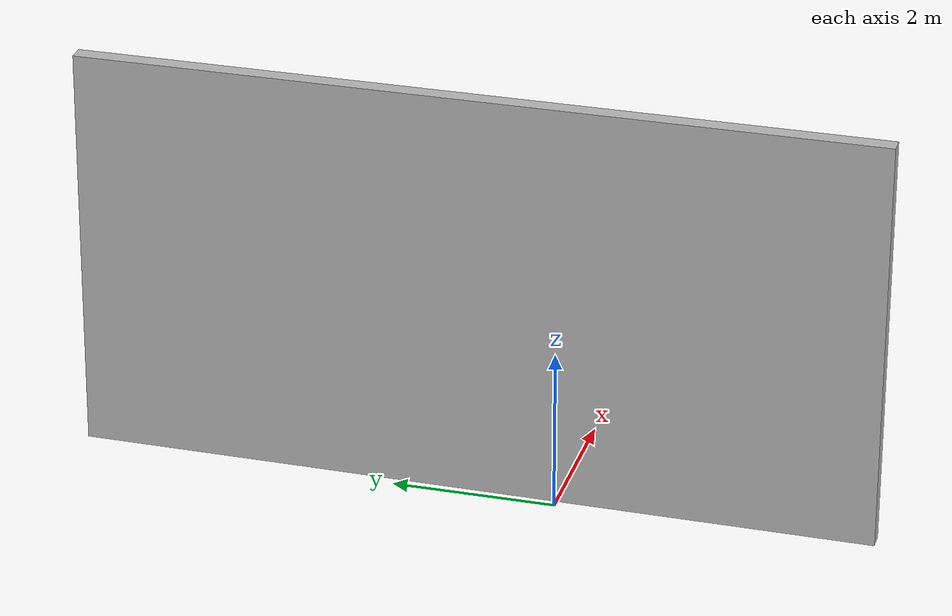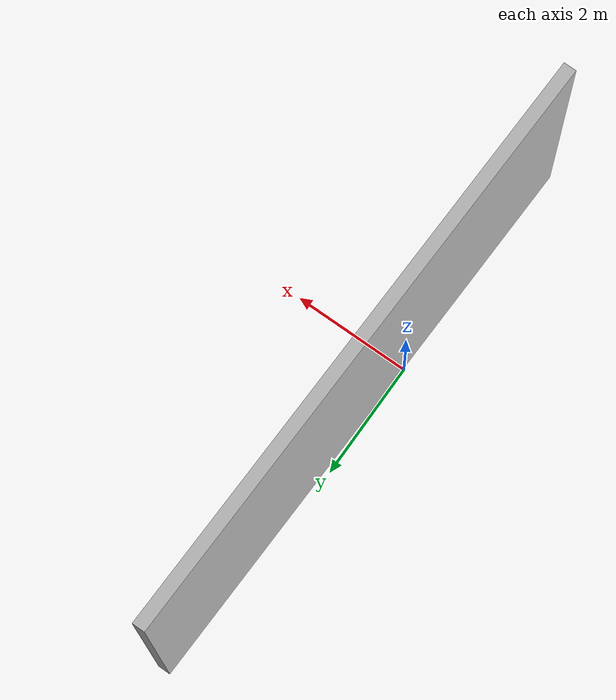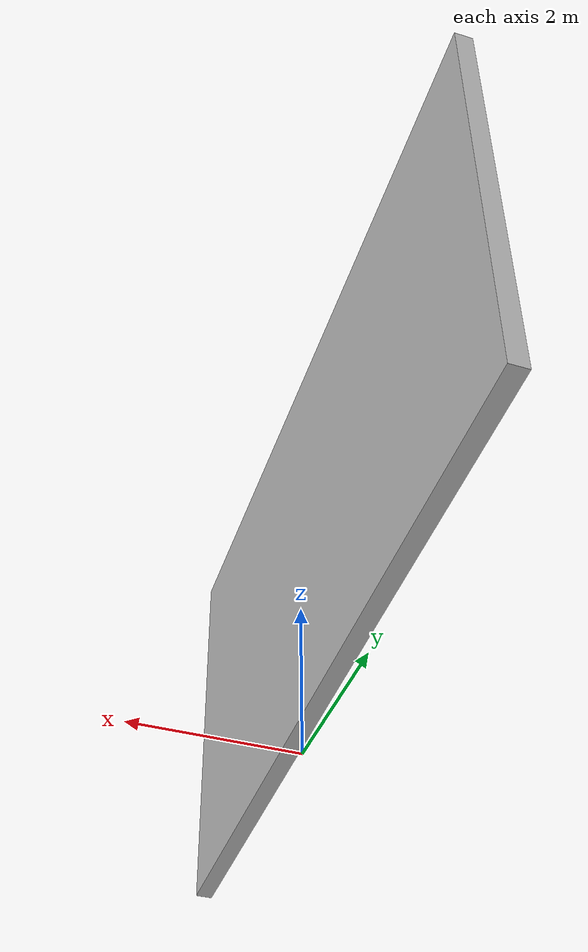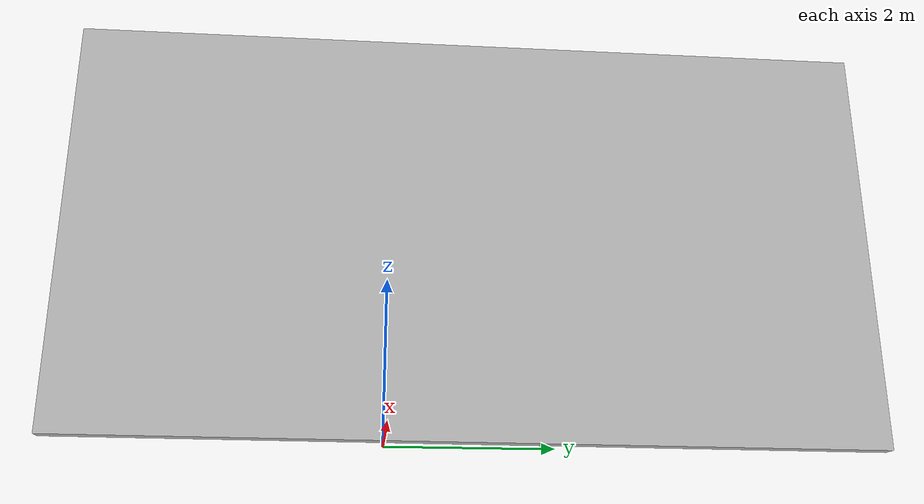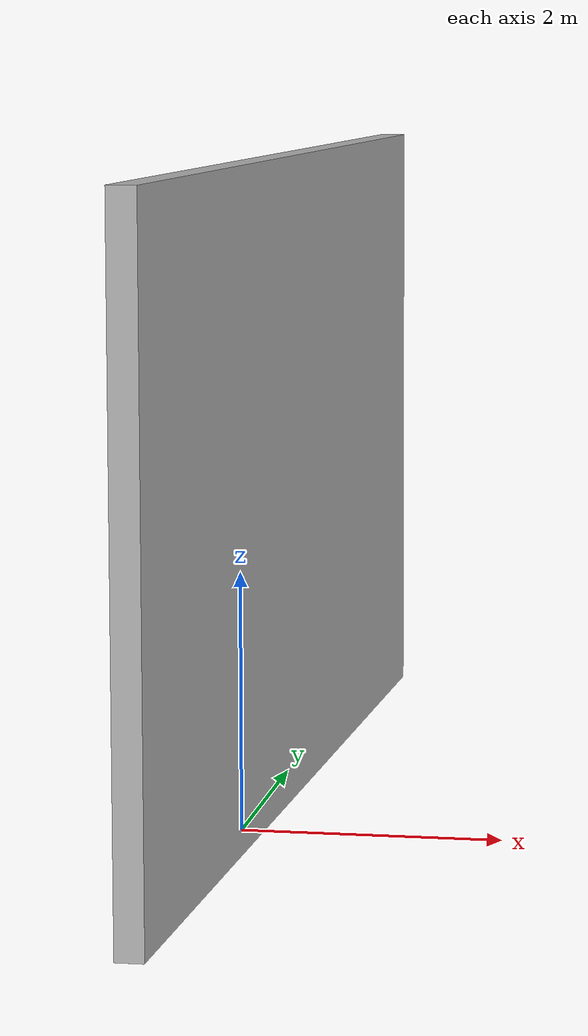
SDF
<?xml version='1.0'?>
<sdf version="1.6">
<model name="moon_wall">
  <static>true</static>
    <link name="link">
      <visual name="visual">
        <geometry>
          <mesh>
            <uri>model://moon_wall/meshes/moon_wall.dae</uri>
          </mesh>
        </geometry>
      </visual>
    </link>
  </model>
</sdf>
